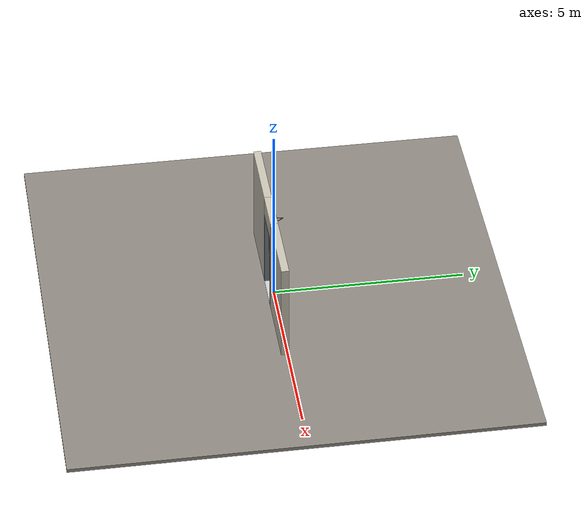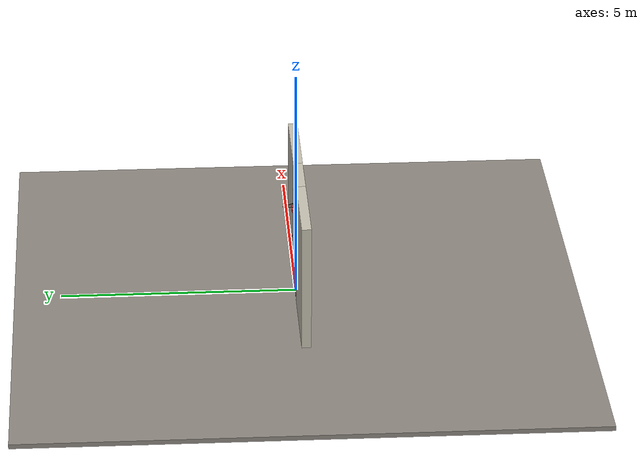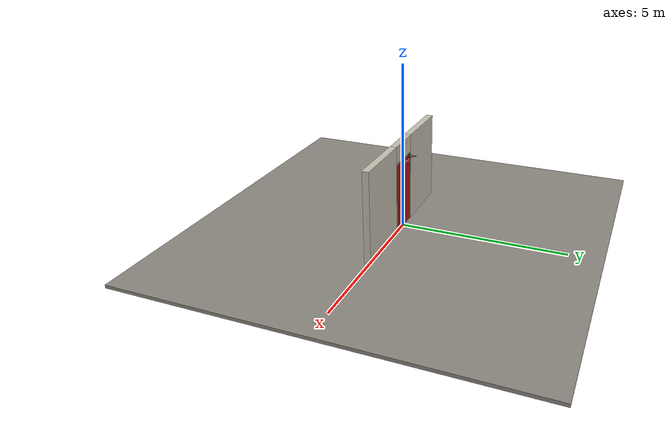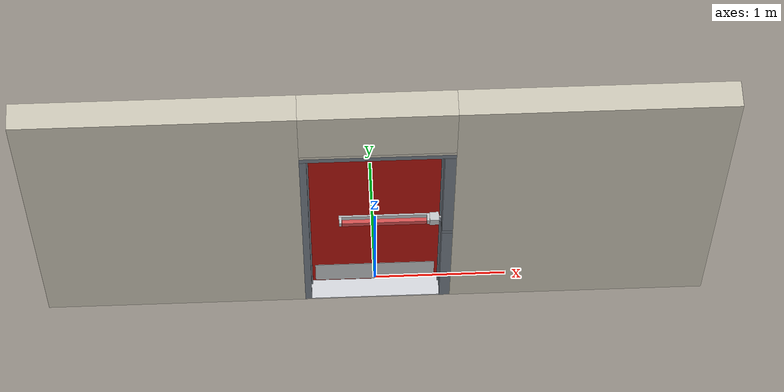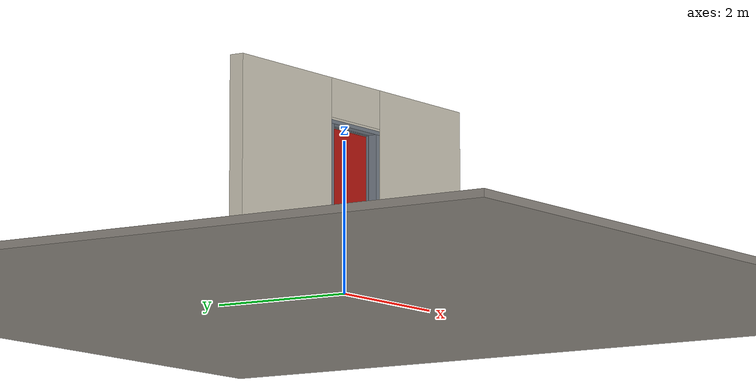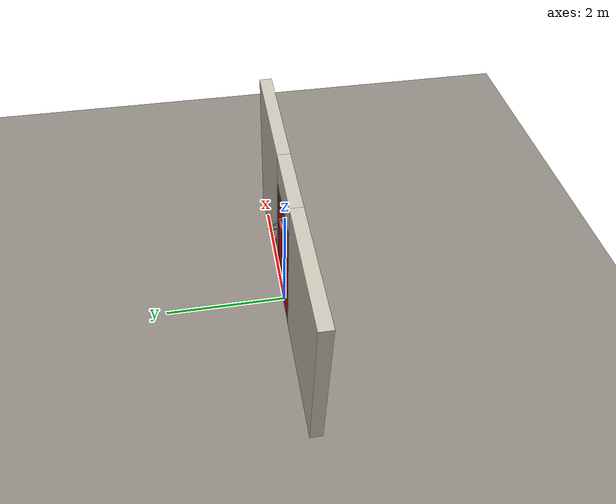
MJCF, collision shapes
<?xml version="1.0" ?>
<mujoco model="db0259_swing_single_full">
  <compiler angle="radian" meshdir="../../hardware" texturedir="../../textures" autolimits="true" inertiafromgeom="false"/>
  <option timestep="0.002" integrator="implicitfast" cone="elliptic" impratio="10" noslip_iterations="3">
    <flag multiccd="enable"/>
  </option>
  <size memory="16M"/>
  <default>
    <geom condim="4" solref="0.005 1" solimp="0.95 0.99 0.001"/>
    <joint solreflimit="0.005 1" solimplimit="0.95 0.99 0.001"/>
    <tendon solreflimit="0.005 1"/>
    <equality solref="0.002 1"/>
  </default>
  <visual>
    <headlight ambient="0.4 0.4 0.4" diffuse="0.7 0.7 0.7" specular="0.2 0.2 0.2"/>
    <quality shadowsize="4096"/>
    <map znear="0.01" zfar="60"/>
  </visual>
  <asset>
    <mesh name="closer_body_b226fdb10b" file="closer_body_b226fdb10b.obj"/>
    <mesh name="exit_sign_a6449bfa2c" file="exit_sign_a6449bfa2c.obj"/>
    <mesh name="hinge_e22b26c0c1" file="hinge_e22b26c0c1.obj"/>
    <mesh name="hinge_jamb_e1d088f8dc" file="hinge_jamb_e1d088f8dc.obj"/>
    <mesh name="pull_1e5d69a91a" file="pull_1e5d69a91a.obj"/>
    <mesh name="touchbar_pad_674bfcd49e" file="touchbar_pad_674bfcd49e.obj"/>
    <material name="mat_floor" rgba="0.55 0.53 0.5 1" specular="0.2" shininess="0.15" reflectance="0"/>
    <material name="mat_wall" rgba="0.78 0.76 0.7 1" specular="0.2" shininess="0.1" reflectance="0"/>
    <material name="mat_leaf" rgba="0.7 0.08 0.05 1" specular="0.2" shininess="0.35" reflectance="0"/>
    <material name="mat_leaf_louver" rgba="0.595 0.068 0.043 1" specular="0.2" shininess="0.4" reflectance="0"/>
    <material name="mat_hinge" rgba="0.65 0.66 0.68 1" specular="0.74" shininess="0.5" reflectance="0.36"/>
    <material name="mat_op_stainless" rgba="0.75 0.76 0.77 1" specular="0.8" shininess="0.65" reflectance="0.4"/>
    <material name="mat_bolt" rgba="0.75 0.76 0.77 1" specular="0.8" shininess="0.65" reflectance="0.4"/>
    <material name="mat_frame" rgba="0.45 0.48 0.52 1" specular="0.32" shininess="0.6" reflectance="0.08"/>
    <material name="mat_seal" rgba="0.1 0.1 0.1 1" specular="0.2" shininess="0.1" reflectance="0"/>
    <material name="mat_threshold" rgba="0.8 0.81 0.83 1" specular="0.8" shininess="0.6" reflectance="0.4"/>
    <material name="mat_closer" rgba="0.22 0.17 0.13 1" specular="0.8" shininess="0.6" reflectance="0.4"/>
    <material name="mat_kick" rgba="0.75 0.76 0.77 1" specular="0.8" shininess="0.65" reflectance="0.4"/>
    <material name="mat_exit_sign" rgba="0.85 0.1 0.1 1" specular="0.2" shininess="0.6" reflectance="0"/>
    <material name="mat_sign_bracket" rgba="0.8 0.81 0.83 1" specular="0.8" shininess="0.6" reflectance="0.4"/>
    <texture name="skybox" type="skybox" builtin="gradient" rgb1="0.6 0.7 0.85" rgb2="0.9 0.92 0.95" width="256" height="256"/>
  </asset>
  <worldbody>
    <light name="sun" pos="1.5 -2.5 4" dir="-0.3 0.5 -0.8" directional="true" diffuse="0.8 0.8 0.8" specular="0.3 0.3 0.3" castshadow="true"/>
    <light name="fill" pos="-1.5 2.5 3" dir="0.3 -0.5 -0.7" directional="true" diffuse="0.35 0.35 0.4" castshadow="false"/>
    <camera name="robot_view" pos="0 -2.708813 1.812087" xyaxes="1 0 0 0 0.26963 0.962964" fovy="52"/>
    <camera name="far_view" pos="0 2.566812 1.812087" xyaxes="-1 0 0 0 -0.26963 0.962964" fovy="52"/>
    <camera name="iso" pos="2.004737 -2.286763 2.234138" xyaxes="0.741536 0.670913 0 -0.242917 0.268487 0.932151" fovy="46"/>
    <camera name="detail_handle" pos="0.572 -0.718 1.32" xyaxes="0.97561 0.219512 0 -0.070934 0.315262 0.94635" fovy="38"/>
    <geom name="floor" type="box" size="6 6 0.05" pos="0 0 -0.05" material="mat_floor" group="0" contype="1" conaffinity="1" friction="0.8 0.005 0.0001" density="2400"/>
    <geom name="wall_left" type="box" size="0.982 0.1 1.3735" pos="-1.518 -0.071 1.3735" material="mat_wall" group="0" contype="1" conaffinity="1" friction="0.6 0.005 0.0001" density="800"/>
    <geom name="wall_right" type="box" size="0.967 0.1 1.3735" pos="1.533 -0.071 1.3735" material="mat_wall" group="0" contype="1" conaffinity="1" friction="0.6 0.005 0.0001" density="800"/>
    <geom name="wall_header" type="box" size="0.551 0.1 0.26" pos="0.015 -0.071 2.487" material="mat_wall" group="0" contype="1" conaffinity="1" friction="0.6 0.005 0.0001" density="800"/>
    <geom name="hinge_0_jamb" type="mesh" mesh="hinge_jamb_e1d088f8dc" pos="-0.483 0.029 0.267" quat="0 1 0 0" material="mat_hinge" group="1" contype="0" conaffinity="0" density="7850"/>
    <geom name="hinge_1_jamb" type="mesh" mesh="hinge_jamb_e1d088f8dc" pos="-0.483 0.029 1.08" quat="0 1 0 0" material="mat_hinge" group="1" contype="0" conaffinity="0" density="7850"/>
    <geom name="hinge_2_jamb" type="mesh" mesh="hinge_jamb_e1d088f8dc" pos="-0.483 0.029 1.963" quat="0 1 0 0" material="mat_hinge" group="1" contype="0" conaffinity="0" density="7850"/>
    <geom name="jamb_hinge" type="box" size="0.025 0.1 1.0735" pos="-0.511 -0.071 1.0735" material="mat_frame" group="0" contype="1" conaffinity="1" friction="0.6 0.005 0.0001" density="300"/>
    <geom name="strike_1040_wall_n" type="box" size="0.04 0.058 0.02" pos="0.526 -0.113 1.04" material="mat_frame" group="0" contype="1" conaffinity="1" friction="0.6 0.005 0.0001" density="300"/>
    <geom name="strike_1040_wall_p" type="box" size="0.04 0.008 0.02" pos="0.526 -0.025 1.04" material="mat_frame" group="0" contype="1" conaffinity="1" friction="0.6 0.005 0.0001" density="300"/>
    <geom name="strike_1040_ramp" type="box" size="0.04 0.034482 0.02" pos="0.534281 0.0044 1.04" quat="0.989198 0 0 -0.146587" material="mat_frame" group="0" contype="1" conaffinity="1" friction="0.12 0.005 0.0001" density="300"/>
    <geom name="strike_1040_back" type="box" size="0.0285 0.011 0.02" pos="0.5375 -0.044 1.04" material="mat_frame" group="0" contype="1" conaffinity="1" friction="0.6 0.005 0.0001" density="300"/>
    <geom name="jamb_strike_0" type="box" size="0.04 0.1 0.51" pos="0.526 -0.071 0.51" material="mat_frame" group="0" contype="1" conaffinity="1" friction="0.6 0.005 0.0001" density="300"/>
    <geom name="jamb_strike_1" type="box" size="0.04 0.1 0.5435" pos="0.526 -0.071 1.6035" material="mat_frame" group="0" contype="1" conaffinity="1" friction="0.6 0.005 0.0001" density="300"/>
    <geom name="jamb_head" type="box" size="0.551 0.1 0.025" pos="0.015 -0.071 2.172" material="mat_frame" group="0" contype="1" conaffinity="1" friction="0.6 0.005 0.0001" density="300"/>
    <geom name="head_stud" type="box" size="0.551 0.1 0.015" pos="0.015 -0.071 2.212" material="mat_wall" group="0" contype="1" conaffinity="1" friction="0.6 0.005 0.0001" density="500"/>
    <geom name="stop_hinge" type="box" size="0.0055 0.016 1.0735" pos="-0.4805 -0.0385 1.0735" material="mat_frame" group="0" contype="1" conaffinity="1" friction="0.6 0.005 0.0001" density="300"/>
    <geom name="stop_strike" type="box" size="0.0055 0.016 0.49625" pos="0.4805 -0.0385 0.49625" material="mat_frame" group="0" contype="1" conaffinity="1" friction="0.6 0.005 0.0001" density="300"/>
    <geom name="stop_strike_1" type="box" size="0.0055 0.016 0.52975" pos="0.4805 -0.0385 1.61725" material="mat_frame" group="0" contype="1" conaffinity="1" friction="0.6 0.005 0.0001" density="300"/>
    <geom name="stop_head" type="box" size="0.486 0.016 0.0055" pos="0 -0.0385 2.1415" material="mat_frame" group="0" contype="1" conaffinity="1" friction="0.6 0.005 0.0001" density="300"/>
    <geom name="seal_hinge" type="box" size="0.004 0.0025 1.0735" pos="-0.483 -0.0245 1.0735" material="mat_seal" group="1" contype="0" conaffinity="0" density="1100"/>
    <geom name="seal_strike" type="box" size="0.004 0.0025 0.49625" pos="0.483 -0.0245 0.49625" material="mat_seal" group="1" contype="0" conaffinity="0" density="1100"/>
    <geom name="seal_strike_1" type="box" size="0.004 0.0025 0.52975" pos="0.483 -0.0245 1.61725" material="mat_seal" group="1" contype="0" conaffinity="0" density="1100"/>
    <geom name="seal_head" type="box" size="0.466 0.0025 0.008" pos="0 -0.0245 2.135" material="mat_seal" group="1" contype="0" conaffinity="0" density="1100"/>
    <geom name="threshold" type="box" size="0.536 0.1 0.0065" pos="0 -0.071 0.0065" material="mat_threshold" group="0" contype="1" conaffinity="1" friction="0.5 0.005 0.0001" density="2700"/>
    <geom name="closer_bracket" type="box" size="0.03 0.012 0.014" pos="-0.386 0.041 2.177" material="mat_closer" group="1" contype="0" conaffinity="0" density="2700"/>
    <geom name="exit_sign" type="mesh" mesh="exit_sign_a6449bfa2c" pos="0 -0.15 2.447" material="mat_exit_sign" group="2" contype="0" conaffinity="0" density="500"/>
    <site name="approach_point" pos="0 -1.5 0" quat="1 0 0 0" size="0.05" rgba="0.2 0.9 0.2 0.5" group="4"/>
    <site name="goal_point" pos="0 1.5 0" quat="1 0 0 0" size="0.05" rgba="0.2 0.9 0.2 0.5" group="4"/>
    <site name="door_plane_center" pos="0 0 1.0735" quat="1 0 0 0" size="0.02" rgba="0.2 0.9 0.2 0.5" group="4"/>
    <body name="leaf" pos="-0.486 0 0">
      <inertial pos="0.47083 0.004879 1.146962" mass="65.957457" quat="-0.479078 0.494526 0.512915 0.512685" diaginertia="4.990041932 28.883967581 33.797035105"/>
      <joint name="leaf_hinge" type="hinge" axis="0 0 1" pos="0.003 0.029 0" limited="true" range="0 1.570796" solreflimit="0.02 1" damping="10.334212" frictionloss="2.744964" stiffness="15.508058" springref="-1.827437" armature="0.02"/>
      <geom name="leaf_slab" type="box" size="0.4825 0.022 1.063" pos="0.4855 0 1.08" material="mat_leaf" group="0" contype="1" conaffinity="1" friction="0.4 0.005 0.0001" density="1"/>
      <geom name="leaf_louver_0" type="box" size="0.24125 0.002 0.02625" pos="0.4855 0 0.292" quat="0.953717 0.300706 0 0" material="mat_leaf_louver" group="1" contype="0" conaffinity="0" density="1"/>
      <geom name="leaf_louver_1" type="box" size="0.24125 0.002 0.02625" pos="0.4855 0 0.342" quat="0.953717 0.300706 0 0" material="mat_leaf_louver" group="1" contype="0" conaffinity="0" density="1"/>
      <geom name="leaf_louver_2" type="box" size="0.24125 0.002 0.02625" pos="0.4855 0 0.392" quat="0.953717 0.300706 0 0" material="mat_leaf_louver" group="1" contype="0" conaffinity="0" density="1"/>
      <geom name="leaf_louver_3" type="box" size="0.24125 0.002 0.02625" pos="0.4855 0 0.442" quat="0.953717 0.300706 0 0" material="mat_leaf_louver" group="1" contype="0" conaffinity="0" density="1"/>
      <geom name="leaf_louver_4" type="box" size="0.24125 0.002 0.02625" pos="0.4855 0 0.492" quat="0.953717 0.300706 0 0" material="mat_leaf_louver" group="1" contype="0" conaffinity="0" density="1"/>
      <geom name="leaf_louver_5" type="box" size="0.24125 0.002 0.02625" pos="0.4855 0 0.542" quat="0.953717 0.300706 0 0" material="mat_leaf_louver" group="1" contype="0" conaffinity="0" density="1"/>
      <geom name="leaf_louver_6" type="box" size="0.24125 0.002 0.02625" pos="0.4855 0 0.592" quat="0.953717 0.300706 0 0" material="mat_leaf_louver" group="1" contype="0" conaffinity="0" density="1"/>
      <geom name="leaf_louver_7" type="box" size="0.24125 0.002 0.02625" pos="0.4855 0 0.642" quat="0.953717 0.300706 0 0" material="mat_leaf_louver" group="1" contype="0" conaffinity="0" density="1"/>
      <geom name="leaf_louver_8" type="box" size="0.24125 0.002 0.02625" pos="0.4855 0 0.692" quat="0.953717 0.300706 0 0" material="mat_leaf_louver" group="1" contype="0" conaffinity="0" density="1"/>
      <geom name="hinge_0" type="mesh" mesh="hinge_e22b26c0c1" pos="0.003 0.029 0.267" quat="0 1 0 0" material="mat_hinge" group="1" contype="0" conaffinity="0" density="7850"/>
      <geom name="hinge_1" type="mesh" mesh="hinge_e22b26c0c1" pos="0.003 0.029 1.08" quat="0 1 0 0" material="mat_hinge" group="1" contype="0" conaffinity="0" density="7850"/>
      <geom name="hinge_2" type="mesh" mesh="hinge_e22b26c0c1" pos="0.003 0.029 1.963" quat="0 1 0 0" material="mat_hinge" group="1" contype="0" conaffinity="0" density="7850"/>
      <geom name="leaf_exit_device_rail" type="box" size="0.333625 0.006 0.025" pos="0.554375 -0.028 1.04" material="mat_op_stainless" group="0" contype="1" conaffinity="1" friction="0.6 0.005 0.0001" density="3000"/>
      <geom name="leaf_exit_device_rail_end_n" type="box" size="0.01 0.0325 0.025" pos="0.23075 -0.0545 1.04" material="mat_op_stainless" group="0" contype="1" conaffinity="1" friction="0.6 0.005 0.0001" density="3000"/>
      <geom name="leaf_exit_device_rail_end_p" type="box" size="0.01 0.0325 0.025" pos="0.878 -0.0545 1.04" material="mat_op_stainless" group="0" contype="1" conaffinity="1" friction="0.6 0.005 0.0001" density="3000"/>
      <geom name="leaf_exit_device_case" type="box" size="0.034 0.034125 0.0375" pos="0.922 -0.056125 1.04" material="mat_op_stainless" group="0" contype="1" conaffinity="1" friction="0.6 0.005 0.0001" density="3000"/>
      <geom name="leaf_far_pull_p" type="mesh" mesh="pull_1e5d69a91a" pos="0.878 0.022 1.04" quat="-0.707107 0.707107 0 0" material="mat_op_stainless" group="1" contype="0" conaffinity="0" density="3000"/>
      <geom name="leaf_far_pull_col_p" type="capsule" size="0.0095 0.08" pos="0.878 0.082 1.04" material="mat_op_stainless" group="3" contype="1" conaffinity="1" rgba="0.8 0.3 0.3 0.25" friction="0.7 0.01 0.0001" density="3000"/>
      <geom name="closer_body" type="mesh" mesh="closer_body_b226fdb10b" pos="0.3 0.022 2.046" quat="-0.707107 0.707107 0 0" material="mat_closer" group="1" contype="0" conaffinity="0" density="2000"/>
      <geom name="closer_body_col" type="box" size="0.12 0.04 0.03" pos="0.3 0.062 2.046" material="mat_closer" group="3" contype="1" conaffinity="1" rgba="0.8 0.3 0.3 0.25" friction="0.6 0.005 0.0001" density="2000"/>
      <geom name="closer_pinion_shaft" type="cylinder" size="0.008 0.0655" pos="0.3 0.064 2.1115" material="mat_closer" group="1" contype="0" conaffinity="0" density="2700"/>
      <geom name="kick_plate_n" type="box" size="0.4525 0.0008 0.125" pos="0.4855 -0.0228 0.152" material="mat_kick" group="2" contype="0" conaffinity="0" density="7900"/>
      <site name="leaf_far_pull_grip_p" pos="0.878 0.082 1.04" quat="1 0 0 0" size="0.012" rgba="0.2 0.9 0.2 0.5" group="4"/>
      <site name="leaf_edge_mid" pos="0.968 0 1.063" quat="1 0 0 0" size="0.02" rgba="0.2 0.9 0.2 0.5" group="4"/>
      <body name="leaf_exit_device" pos="0.554375 -0.022 1.04">
        <inertial pos="0 -0.05 0" mass="5.032125" quat="0 0 0.707107 0.707107" diaginertia="0.00122658 0.162223785 0.162695547"/>
        <joint name="leaf_exit_device_slide" type="slide" axis="0 1 0" limited="true" range="0 0.016" damping="157.715567" frictionloss="0.5" stiffness="1200" springref="-0.015" armature="0.15"/>
        <geom name="leaf_exit_device_pad" type="mesh" mesh="touchbar_pad_674bfcd49e" pos="0 0 0" quat="0.707107 0.707107 0 0" material="mat_op_stainless" group="1" contype="0" conaffinity="0" density="3000"/>
        <geom name="leaf_exit_device_pad_col" type="box" size="0.310625 0.015 0.0225" pos="0 -0.05 0" material="mat_op_stainless" group="3" contype="1" conaffinity="1" rgba="0.8 0.3 0.3 0.25" friction="0.8 0.01 0.0001" density="3000"/>
        <site name="leaf_exit_device_push" pos="0 -0.065 0" quat="1 0 0 0" size="0.015" rgba="0.2 0.9 0.2 0.5" group="4"/>
      </body>
      <body name="leaf_latch_bolt" pos="0.968 -0.044 1.04">
        <inertial pos="-0.0055 0 0" mass="0.102826" quat="0.92388 -0.382683 0 0" diaginertia="0.000004365 0.000018287 0.000018287"/>
        <joint name="leaf_latch_bolt_slide" type="slide" axis="-1 0 0" limited="true" range="0 0.019" damping="2" frictionloss="0.3" stiffness="800" springref="-0.01" armature="0.1"/>
        <geom name="leaf_latch_bolt_capsule" type="capsule" size="0.0095 0.015" pos="-0.0055 0 0" quat="0.707107 0 0.707107 0" material="mat_bolt" group="0" contype="1" conaffinity="1" friction="0.2 0.005 0.0001" density="8500"/>
      </body>
      <body name="closer_arm_main" pos="0.3 0.064 2.177" quat="0.472212 0 0 0.881485">
        <inertial pos="0.14 0 0" mass="0.12096" quat="1 0 0 0" diaginertia="0.000003588 0.00079128 0.000792852"/>
        <joint name="closer_pinion" type="hinge" axis="0 0 1" limited="false" damping="0.01" armature="0.002"/>
        <geom name="closer_arm_main_geom" type="box" size="0.14 0.008 0.005" pos="0.14 0 0" material="mat_closer" group="1" contype="0" conaffinity="0" density="2700"/>
        <body name="closer_arm_fore" pos="0.28 0 0" quat="-0.371222 0 0 -0.928544">
          <inertial pos="0.128088 0 0" mass="0.076531" quat="1 0 0 0" diaginertia="0.000001771 0.000437665 0.000438201"/>
          <joint name="closer_elbow" type="hinge" axis="0 0 1" limited="false" damping="0.01" armature="0.002"/>
          <geom name="closer_arm_fore_geom" type="box" size="0.1125 0.007 0.004" pos="0.1125 0 0" material="mat_closer" group="1" contype="0" conaffinity="0" density="2700"/>
          <geom name="closer_fore_neck" type="box" size="0.0175 0.003 0.003" pos="0.2425 0 0" material="mat_closer" group="1" contype="0" conaffinity="0" density="2700"/>
          <geom name="closer_fore_pivot" type="cylinder" size="0.005 0.012" pos="0.26 0 0" material="mat_closer" group="1" contype="0" conaffinity="0" density="2700"/>
        </body>
      </body>
    </body>
  </worldbody>
  <tendon>
    <fixed name="leaf_latch_bolt_coupling" limited="true" range="0 10">
      <joint joint="leaf_latch_bolt_slide" coef="1"/>
      <joint joint="leaf_exit_device_slide" coef="-1.357143"/>
    </fixed>
  </tendon>
  <equality>
    <connect name="closer_arm_connect" body1="closer_arm_fore" body2="world" anchor="0.26 0 0" active="true"/>
  </equality>
  <contact>
    <exclude body1="closer_arm_main" body2="leaf"/>
    <exclude body1="closer_arm_fore" body2="leaf"/>
    <exclude body1="closer_arm_main" body2="closer_arm_fore"/>
  </contact>
  <sensor>
    <jointpos name="leaf_hinge_pos" joint="leaf_hinge"/>
    <jointvel name="leaf_hinge_vel" joint="leaf_hinge"/>
    <jointpos name="leaf_exit_device_slide_pos" joint="leaf_exit_device_slide"/>
    <jointvel name="leaf_exit_device_slide_vel" joint="leaf_exit_device_slide"/>
    <jointpos name="leaf_latch_bolt_slide_pos" joint="leaf_latch_bolt_slide"/>
    <jointvel name="leaf_latch_bolt_slide_vel" joint="leaf_latch_bolt_slide"/>
  </sensor>
</mujoco>
